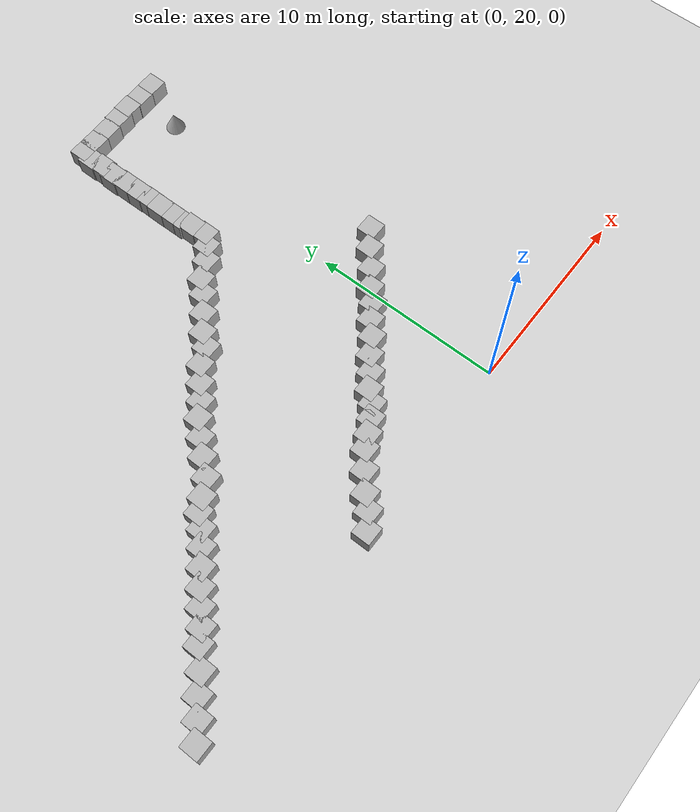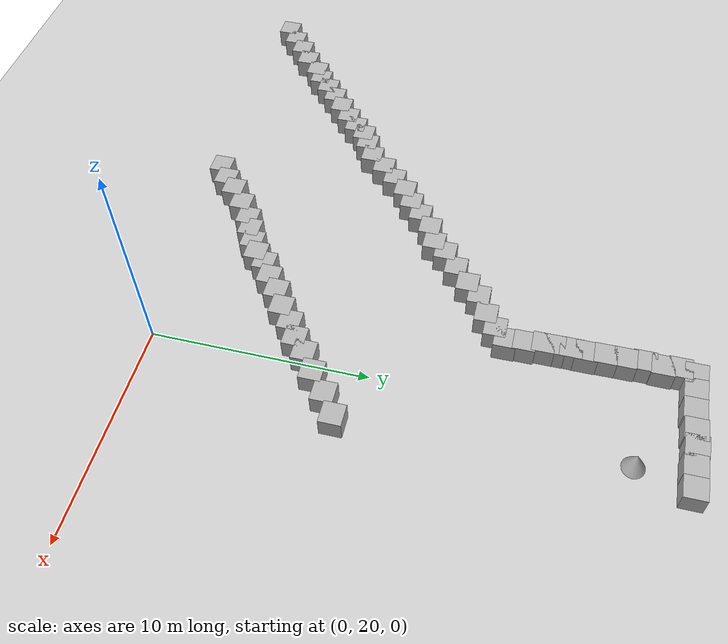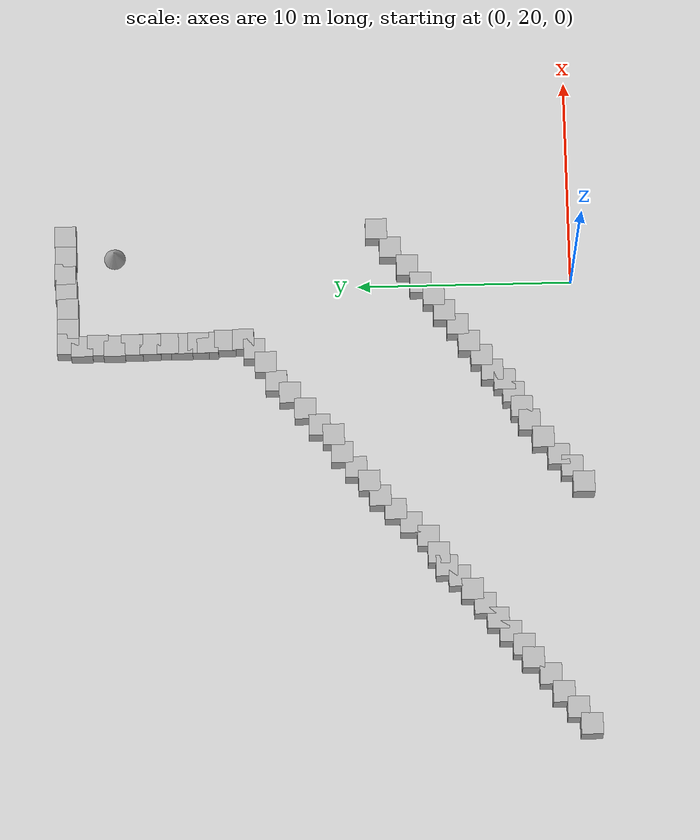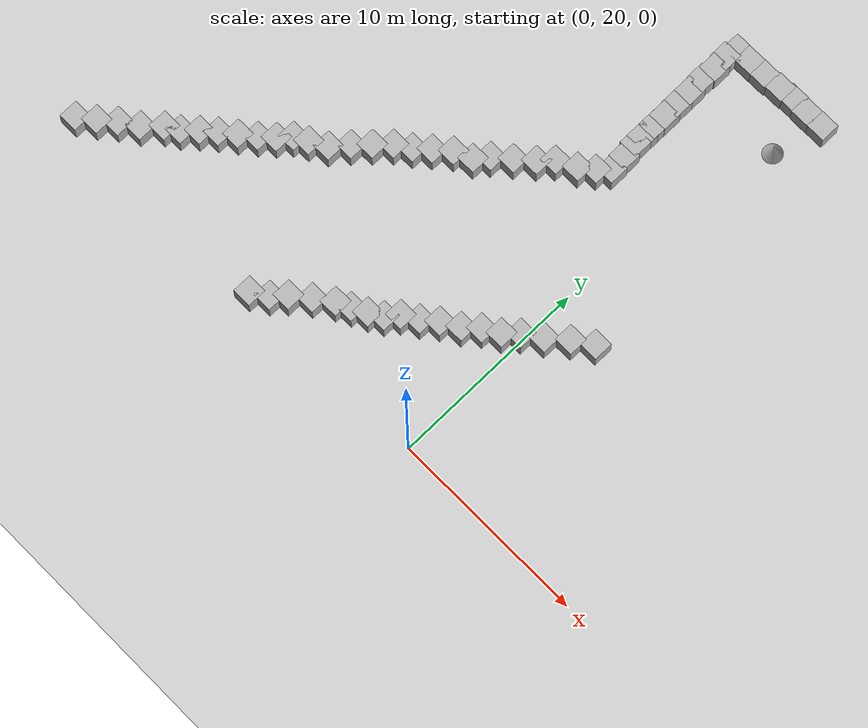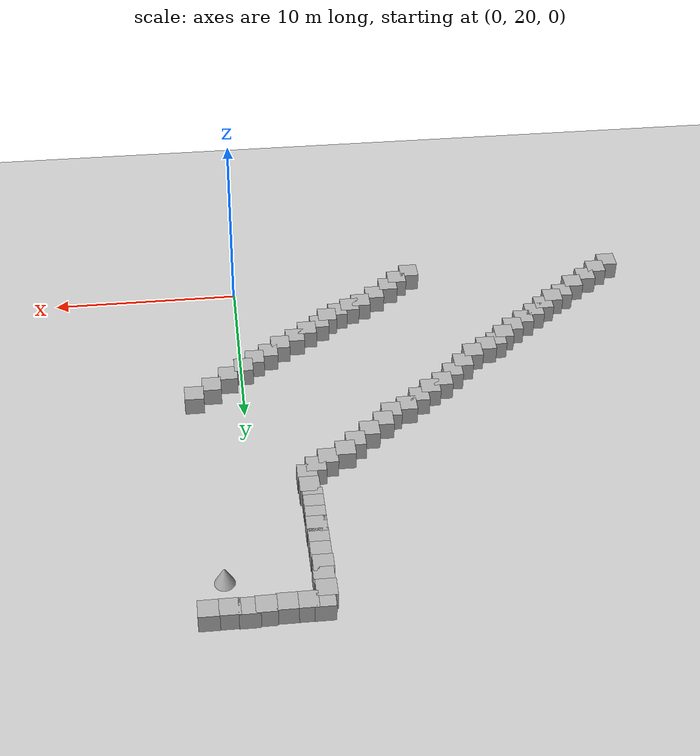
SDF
<sdf version="1.10">
 <world name="empty">
  <model name="ground_plane">
   <static>true</static>
   <link name="link">
    <collision name="collision">
     <geometry><plane><normal>0 0 1</normal><size>100 100</size></plane></geometry>
    </collision>
    <visual name="visual">
     <geometry><plane><normal>0 0 1</normal><size>100 100</size></plane></geometry>
     <material>
      <ambient>0.800000012 0.800000012 0.800000012 1</ambient>
      <diffuse>0.800000012 0.800000012 0.800000012 1</diffuse>
      <specular>0.800000012 0.800000012 0.800000012 1</specular>
     </material>
    </visual>
    <inertial>
     <mass>1</mass>
     <inertia><ixx>1</ixx><ixy>0</ixy><ixz>0</ixz><iyy>1</iyy><iyz>0</iyz><izz>1</izz></inertia>
    </inertial>
   </link>
  </model>
  <model name="box_7_115">
   <pose>2.4471903687864822 43.687776101140003 0.5 0 0 0</pose>
   <link name="box_link">
    <inertial>
     <inertia><ixx>0.16666</ixx><ixy>0</ixy><ixz>0</ixz><iyy>0.16666</iyy><iyz>0</iyz><izz>0.16666</izz></inertia>
     <mass>1</mass>
    </inertial>
    <collision name="box_collision"><geometry><box><size>1 1 1</size></box></geometry></collision>
    <visual name="box_visual">
     <geometry><box><size>1 1 1</size></box></geometry>
     <material>
      <ambient>0.300000012 0.300000012 0.300000012 1</ambient>
      <diffuse>0.699999988 0.699999988 0.699999988 1</diffuse>
      <specular>1 1 1 1</specular>
     </material>
    </visual>
   </link>
   <static>false</static>
  </model>
  <model name="box_7_116">
   <pose>1.4781276219221224 43.677494067447036 0.5 0 0 0</pose>
   <link name="box_link">
    <inertial>
     <inertia><ixx>0.16666</ixx><ixy>0</ixy><ixz>0</ixz><iyy>0.16666</iyy><iyz>0</iyz><izz>0.16666</izz></inertia>
     <mass>1</mass>
    </inertial>
    <collision name="box_collision"><geometry><box><size>1 1 1</size></box></geometry></collision>
    <visual name="box_visual">
     <geometry><box><size>1 1 1</size></box></geometry>
     <material>
      <ambient>0.300000012 0.300000012 0.300000012 1</ambient>
      <diffuse>0.699999988 0.699999988 0.699999988 1</diffuse>
      <specular>1 1 1 1</specular>
     </material>
    </visual>
   </link>
   <static>false</static>
  </model>
  <model name="box_7_117">
   <pose>0.59838941232294562 43.703197926859559 0.5 0 0 0</pose>
   <link name="box_link">
    <inertial>
     <inertia><ixx>0.16666</ixx><ixy>0</ixy><ixz>0</ixz><iyy>0.16666</iyy><iyz>0</iyz><izz>0.16666</izz></inertia>
     <mass>1</mass>
    </inertial>
    <collision name="box_collision"><geometry><box><size>1 1 1</size></box></geometry></collision>
    <visual name="box_visual">
     <geometry><box><size>1 1 1</size></box></geometry>
     <material>
      <ambient>0.300000012 0.300000012 0.300000012 1</ambient>
      <diffuse>0.699999988 0.699999988 0.699999988 1</diffuse>
      <specular>1 1 1 1</specular>
     </material>
    </visual>
   </link>
   <static>false</static>
  </model>
  <model name="box_7_118">
   <pose>-0.1727487053402923 43.656934613011174 0.5 0 0 0</pose>
   <link name="box_link">
    <inertial>
     <inertia><ixx>0.16666</ixx><ixy>0</ixy><ixz>0</ixz><iyy>0.16666</iyy><iyz>0</iyz><izz>0.16666</izz></inertia>
     <mass>1</mass>
    </inertial>
    <collision name="box_collision"><geometry><box><size>1 1 1</size></box></geometry></collision>
    <visual name="box_visual">
     <geometry><box><size>1 1 1</size></box></geometry>
     <material>
      <ambient>0.300000012 0.300000012 0.300000012 1</ambient>
      <diffuse>0.699999988 0.699999988 0.699999988 1</diffuse>
      <specular>1 1 1 1</specular>
     </material>
    </visual>
   </link>
   <static>false</static>
  </model>
  <model name="box_7_119">
   <pose>-1.1270526920820441 43.596638676921927 0.5 0 0 0</pose>
   <link name="box_link">
    <inertial>
     <inertia><ixx>0.16666</ixx><ixy>0</ixy><ixz>0</ixz><iyy>0.16666</iyy><iyz>0</iyz><izz>0.16666</izz></inertia>
     <mass>1</mass>
    </inertial>
    <collision name="box_collision"><geometry><box><size>1 1 1</size></box></geometry></collision>
    <visual name="box_visual">
     <geometry><box><size>1 1 1</size></box></geometry>
     <material>
      <ambient>0.300000012 0.300000012 0.300000012 1</ambient>
      <diffuse>0.699999988 0.699999988 0.699999988 1</diffuse>
      <specular>1 1 1 1</specular>
     </material>
    </visual>
   </link>
   <static>false</static>
  </model>
  <model name="box_7_120">
   <pose>-2.0641895070454108 43.588703833776485 0.5 0 0 0</pose>
   <link name="box_link">
    <inertial>
     <inertia><ixx>0.16666</ixx><ixy>0</ixy><ixz>0</ixz><iyy>0.16666</iyy><iyz>0</iyz><izz>0.16666</izz></inertia>
     <mass>1</mass>
    </inertial>
    <collision name="box_collision"><geometry><box><size>1 1 1</size></box></geometry></collision>
    <visual name="box_visual">
     <geometry><box><size>1 1 1</size></box></geometry>
     <material>
      <ambient>0.300000012 0.300000012 0.300000012 1</ambient>
      <diffuse>0.699999988 0.699999988 0.699999988 1</diffuse>
      <specular>1 1 1 1</specular>
     </material>
    </visual>
   </link>
   <static>false</static>
  </model>
  <model name="box_7_121">
   <pose>-2.8369073517508143 43.594247403610829 0.5 0 0 0</pose>
   <link name="box_link">
    <inertial>
     <inertia><ixx>0.16666</ixx><ixy>0</ixy><ixz>0</ixz><iyy>0.16666</iyy><iyz>0</iyz><izz>0.16666</izz></inertia>
     <mass>1</mass>
    </inertial>
    <collision name="box_collision"><geometry><box><size>1 1 1</size></box></geometry></collision>
    <visual name="box_visual">
     <geometry><box><size>1 1 1</size></box></geometry>
     <material>
      <ambient>0.300000012 0.300000012 0.300000012 1</ambient>
      <diffuse>0.699999988 0.699999988 0.699999988 1</diffuse>
      <specular>1 1 1 1</specular>
     </material>
    </visual>
   </link>
   <static>false</static>
  </model>
  <model name="box_7_122">
   <pose>-2.9721799100249795 42.940776070693047 0.5 0 0 0</pose>
   <link name="box_link">
    <inertial>
     <inertia><ixx>0.16666</ixx><ixy>0</ixy><ixz>0</ixz><iyy>0.16666</iyy><iyz>0</iyz><izz>0.16666</izz></inertia>
     <mass>1</mass>
    </inertial>
    <collision name="box_collision"><geometry><box><size>1 1 1</size></box></geometry></collision>
    <visual name="box_visual">
     <geometry><box><size>1 1 1</size></box></geometry>
     <material>
      <ambient>0.300000012 0.300000012 0.300000012 1</ambient>
      <diffuse>0.699999988 0.699999988 0.699999988 1</diffuse>
      <specular>1 1 1 1</specular>
     </material>
    </visual>
   </link>
   <static>false</static>
  </model>
  <model name="box_7_123">
   <pose>-2.9280016907426711 42.196661175639719 0.5 0 0 0</pose>
   <link name="box_link">
    <inertial>
     <inertia><ixx>0.16666</ixx><ixy>0</ixy><ixz>0</ixz><iyy>0.16666</iyy><iyz>0</iyz><izz>0.16666</izz></inertia>
     <mass>1</mass>
    </inertial>
    <collision name="box_collision"><geometry><box><size>1 1 1</size></box></geometry></collision>
    <visual name="box_visual">
     <geometry><box><size>1 1 1</size></box></geometry>
     <material>
      <ambient>0.300000012 0.300000012 0.300000012 1</ambient>
      <diffuse>0.699999988 0.699999988 0.699999988 1</diffuse>
      <specular>1 1 1 1</specular>
     </material>
    </visual>
   </link>
   <static>false</static>
  </model>
  <model name="box_7_124">
   <pose>-2.9763911740371682 41.427905493202431 0.5 0 0 0</pose>
   <link name="box_link">
    <inertial>
     <inertia><ixx>0.16666</ixx><ixy>0</ixy><ixz>0</ixz><iyy>0.16666</iyy><iyz>0</iyz><izz>0.16666</izz></inertia>
     <mass>1</mass>
    </inertial>
    <collision name="box_collision"><geometry><box><size>1 1 1</size></box></geometry></collision>
    <visual name="box_visual">
     <geometry><box><size>1 1 1</size></box></geometry>
     <material>
      <ambient>0.300000012 0.300000012 0.300000012 1</ambient>
      <diffuse>0.699999988 0.699999988 0.699999988 1</diffuse>
      <specular>1 1 1 1</specular>
     </material>
    </visual>
   </link>
   <static>false</static>
  </model>
  <model name="box_7_125">
   <pose>-2.934513633299642 40.60224227928903 0.5 0 0 0</pose>
   <link name="box_link">
    <inertial>
     <inertia><ixx>0.16666</ixx><ixy>0</ixy><ixz>0</ixz><iyy>0.16666</iyy><iyz>0</iyz><izz>0.16666</izz></inertia>
     <mass>1</mass>
    </inertial>
    <collision name="box_collision"><geometry><box><size>1 1 1</size></box></geometry></collision>
    <visual name="box_visual">
     <geometry><box><size>1 1 1</size></box></geometry>
     <material>
      <ambient>0.300000012 0.300000012 0.300000012 1</ambient>
      <diffuse>0.699999988 0.699999988 0.699999988 1</diffuse>
      <specular>1 1 1 1</specular>
     </material>
    </visual>
   </link>
   <static>false</static>
  </model>
  <model name="box_7_126">
   <pose>-2.9280084508352244 39.765509934705626 0.5 0 0 0</pose>
   <link name="box_link">
    <inertial>
     <inertia><ixx>0.16666</ixx><ixy>0</ixy><ixz>0</ixz><iyy>0.16666</iyy><iyz>0</iyz><izz>0.16666</izz></inertia>
     <mass>1</mass>
    </inertial>
    <collision name="box_collision"><geometry><box><size>1 1 1</size></box></geometry></collision>
    <visual name="box_visual">
     <geometry><box><size>1 1 1</size></box></geometry>
     <material>
      <ambient>0.300000012 0.300000012 0.300000012 1</ambient>
      <diffuse>0.699999988 0.699999988 0.699999988 1</diffuse>
      <specular>1 1 1 1</specular>
     </material>
    </visual>
   </link>
   <static>false</static>
  </model>
  <model name="box_7_127">
   <pose>-2.9034381792519941 38.949233205330124 0.5 0 0 0</pose>
   <link name="box_link">
    <inertial>
     <inertia><ixx>0.16666</ixx><ixy>0</ixy><ixz>0</ixz><iyy>0.16666</iyy><iyz>0</iyz><izz>0.16666</izz></inertia>
     <mass>1</mass>
    </inertial>
    <collision name="box_collision"><geometry><box><size>1 1 1</size></box></geometry></collision>
    <visual name="box_visual">
     <geometry><box><size>1 1 1</size></box></geometry>
     <material>
      <ambient>0.300000012 0.300000012 0.300000012 1</ambient>
      <diffuse>0.699999988 0.699999988 0.699999988 1</diffuse>
      <specular>1 1 1 1</specular>
     </material>
    </visual>
   </link>
   <static>false</static>
  </model>
  <model name="box_7_128">
   <pose>-2.9125008093424825 38.285947061899762 0.5 0 0 0</pose>
   <link name="box_link">
    <inertial>
     <inertia><ixx>0.16666</ixx><ixy>0</ixy><ixz>0</ixz><iyy>0.16666</iyy><iyz>0</iyz><izz>0.16666</izz></inertia>
     <mass>1</mass>
    </inertial>
    <collision name="box_collision"><geometry><box><size>1 1 1</size></box></geometry></collision>
    <visual name="box_visual">
     <geometry><box><size>1 1 1</size></box></geometry>
     <material>
      <ambient>0.300000012 0.300000012 0.300000012 1</ambient>
      <diffuse>0.699999988 0.699999988 0.699999988 1</diffuse>
      <specular>1 1 1 1</specular>
     </material>
    </visual>
   </link>
   <static>false</static>
  </model>
  <model name="box_7_129">
   <pose>-2.9042566282335311 37.528984026693919 0.5 0 0 0</pose>
   <link name="box_link">
    <inertial>
     <inertia><ixx>0.16666</ixx><ixy>0</ixy><ixz>0</ixz><iyy>0.16666</iyy><iyz>0</iyz><izz>0.16666</izz></inertia>
     <mass>1</mass>
    </inertial>
    <collision name="box_collision"><geometry><box><size>1 1 1</size></box></geometry></collision>
    <visual name="box_visual">
     <geometry><box><size>1 1 1</size></box></geometry>
     <material>
      <ambient>0.300000012 0.300000012 0.300000012 1</ambient>
      <diffuse>0.699999988 0.699999988 0.699999988 1</diffuse>
      <specular>1 1 1 1</specular>
     </material>
    </visual>
   </link>
   <static>false</static>
  </model>
  <model name="box_7_130">
   <pose>-2.9011840146607861 37.088707593077444 0.5 0 0 0</pose>
   <link name="box_link">
    <inertial>
     <inertia><ixx>0.16666</ixx><ixy>0</ixy><ixz>0</ixz><iyy>0.16666</iyy><iyz>0</iyz><izz>0.16666</izz></inertia>
     <mass>1</mass>
    </inertial>
    <collision name="box_collision"><geometry><box><size>1 1 1</size></box></geometry></collision>
    <visual name="box_visual">
     <geometry><box><size>1 1 1</size></box></geometry>
     <material>
      <ambient>0.300000012 0.300000012 0.300000012 1</ambient>
      <diffuse>0.699999988 0.699999988 0.699999988 1</diffuse>
      <specular>1 1 1 1</specular>
     </material>
    </visual>
   </link>
   <static>false</static>
  </model>
  <model name="cone">
   <pose>1.6231491636333293 41.406147227595547 0.5 0 0 0</pose>
   <link name="cone_link">
    <inertial>
     <inertia>
      <ixx>0.074999999999999997</ixx>
      <ixy>0</ixy>
      <ixz>0</ixz>
      <iyy>0.074999999999999997</iyy>
      <iyz>0</iyz>
      <izz>0.074999999999999997</izz>
     </inertia>
     <mass>1</mass>
    </inertial>
    <collision name="cone_collision">
     <geometry><cone><radius>0.5</radius><length>1</length></cone></geometry>
    </collision>
    <visual name="cone_visual">
     <geometry><cone><radius>0.5</radius><length>1</length></cone></geometry>
     <material>
      <ambient>0.300000012 0.300000012 0.300000012 1</ambient>
      <diffuse>0.699999988 0.699999988 0.699999988 1</diffuse>
      <specular>1 1 1 1</specular>
     </material>
    </visual>
   </link>
   <static>false</static>
  </model>
  <model name="box_19">
   <pose>-2.8085357170069036 36.277302544898852 0.5 0 0 0</pose>
   <link name="box_link">
    <inertial>
     <inertia><ixx>0.16666</ixx><ixy>0</ixy><ixz>0</ixz><iyy>0.16666</iyy><iyz>0</iyz><izz>0.16666</izz></inertia>
     <mass>1</mass>
    </inertial>
    <collision name="box_collision"><geometry><box><size>1 1 1</size></box></geometry></collision>
    <visual name="box_visual">
     <geometry><box><size>1 1 1</size></box></geometry>
     <material>
      <ambient>0.300000012 0.300000012 0.300000012 1</ambient>
      <diffuse>0.699999988 0.699999988 0.699999988 1</diffuse>
      <specular>1 1 1 1</specular>
     </material>
    </visual>
   </link>
   <static>false</static>
  </model>
  <model name="box_7_131">
   <pose>-2.7735017019063557 35.434279046407973 0.5 0 0 0</pose>
   <link name="box_link">
    <inertial>
     <inertia><ixx>0.16666</ixx><ixy>0</ixy><ixz>0</ixz><iyy>0.16666</iyy><iyz>0</iyz><izz>0.16666</izz></inertia>
     <mass>1</mass>
    </inertial>
    <collision name="box_collision"><geometry><box><size>1 1 1</size></box></geometry></collision>
    <visual name="box_visual">
     <geometry><box><size>1 1 1</size></box></geometry>
     <material>
      <ambient>0.300000012 0.300000012 0.300000012 1</ambient>
      <diffuse>0.699999988 0.699999988 0.699999988 1</diffuse>
      <specular>1 1 1 1</specular>
     </material>
    </visual>
   </link>
   <static>false</static>
  </model>
  <model name="box_7_132">
   <pose>-3.2518631290173872 34.919604592851705 0.5 0 0 0</pose>
   <link name="box_link">
    <inertial>
     <inertia><ixx>0.16666</ixx><ixy>0</ixy><ixz>0</ixz><iyy>0.16666</iyy><iyz>0</iyz><izz>0.16666</izz></inertia>
     <mass>1</mass>
    </inertial>
    <collision name="box_collision"><geometry><box><size>1 1 1</size></box></geometry></collision>
    <visual name="box_visual">
     <geometry><box><size>1 1 1</size></box></geometry>
     <material>
      <ambient>0.300000012 0.300000012 0.300000012 1</ambient>
      <diffuse>0.699999988 0.699999988 0.699999988 1</diffuse>
      <specular>1 1 1 1</specular>
     </material>
    </visual>
   </link>
   <static>false</static>
  </model>
  <model name="box_7_133">
   <pose>-3.901642174971685 34.403278814547349 0.5 0 0 0</pose>
   <link name="box_link">
    <inertial>
     <inertia><ixx>0.16666</ixx><ixy>0</ixy><ixz>0</ixz><iyy>0.16666</iyy><iyz>0</iyz><izz>0.16666</izz></inertia>
     <mass>1</mass>
    </inertial>
    <collision name="box_collision"><geometry><box><size>1 1 1</size></box></geometry></collision>
    <visual name="box_visual">
     <geometry><box><size>1 1 1</size></box></geometry>
     <material>
      <ambient>0.300000012 0.300000012 0.300000012 1</ambient>
      <diffuse>0.699999988 0.699999988 0.699999988 1</diffuse>
      <specular>1 1 1 1</specular>
     </material>
    </visual>
   </link>
   <static>false</static>
  </model>
  <model name="box_7_134">
   <pose>-4.8285189355674838 33.920678409191623 0.5 0 0 0</pose>
   <link name="box_link">
    <inertial>
     <inertia><ixx>0.16666</ixx><ixy>0</ixy><ixz>0</ixz><iyy>0.16666</iyy><iyz>0</iyz><izz>0.16666</izz></inertia>
     <mass>1</mass>
    </inertial>
    <collision name="box_collision"><geometry><box><size>1 1 1</size></box></geometry></collision>
    <visual name="box_visual">
     <geometry><box><size>1 1 1</size></box></geometry>
     <material>
      <ambient>0.300000012 0.300000012 0.300000012 1</ambient>
      <diffuse>0.699999988 0.699999988 0.699999988 1</diffuse>
      <specular>1 1 1 1</specular>
     </material>
    </visual>
   </link>
   <static>false</static>
  </model>
  <model name="box_7_135">
   <pose>-5.4134456976116692 33.294883308442927 0.5 0 0 0</pose>
   <link name="box_link">
    <inertial>
     <inertia><ixx>0.16666</ixx><ixy>0</ixy><ixz>0</ixz><iyy>0.16666</iyy><iyz>0</iyz><izz>0.16666</izz></inertia>
     <mass>1</mass>
    </inertial>
    <collision name="box_collision"><geometry><box><size>1 1 1</size></box></geometry></collision>
    <visual name="box_visual">
     <geometry><box><size>1 1 1</size></box></geometry>
     <material>
      <ambient>0.300000012 0.300000012 0.300000012 1</ambient>
      <diffuse>0.699999988 0.699999988 0.699999988 1</diffuse>
      <specular>1 1 1 1</specular>
     </material>
    </visual>
   </link>
   <static>false</static>
  </model>
  <model name="box_7_136">
   <pose>-6.2064335820567731 32.603498856234857 0.5 0 0 0</pose>
   <link name="box_link">
    <inertial>
     <inertia><ixx>0.16666</ixx><ixy>0</ixy><ixz>0</ixz><iyy>0.16666</iyy><iyz>0</iyz><izz>0.16666</izz></inertia>
     <mass>1</mass>
    </inertial>
    <collision name="box_collision"><geometry><box><size>1 1 1</size></box></geometry></collision>
    <visual name="box_visual">
     <geometry><box><size>1 1 1</size></box></geometry>
     <material>
      <ambient>0.300000012 0.300000012 0.300000012 1</ambient>
      <diffuse>0.699999988 0.699999988 0.699999988 1</diffuse>
      <specular>1 1 1 1</specular>
     </material>
    </visual>
   </link>
   <static>false</static>
  </model>
  <model name="box_7_137">
   <pose>-7.0026504099331266 31.949669320129779 0.5 0 0 0</pose>
   <link name="box_link">
    <inertial>
     <inertia><ixx>0.16666</ixx><ixy>0</ixy><ixz>0</ixz><iyy>0.16666</iyy><iyz>0</iyz><izz>0.16666</izz></inertia>
     <mass>1</mass>
    </inertial>
    <collision name="box_collision"><geometry><box><size>1 1 1</size></box></geometry></collision>
    <visual name="box_visual">
     <geometry><box><size>1 1 1</size></box></geometry>
     <material>
      <ambient>0.300000012 0.300000012 0.300000012 1</ambient>
      <diffuse>0.699999988 0.699999988 0.699999988 1</diffuse>
      <specular>1 1 1 1</specular>
     </material>
    </visual>
   </link>
   <static>false</static>
  </model>
  <model name="box_7_138">
   <pose>-7.4906202281272076 31.313689824834416 0.5 0 0 0</pose>
   <link name="box_link">
    <inertial>
     <inertia><ixx>0.16666</ixx><ixy>0</ixy><ixz>0</ixz><iyy>0.16666</iyy><iyz>0</iyz><izz>0.16666</izz></inertia>
     <mass>1</mass>
    </inertial>
    <collision name="box_collision"><geometry><box><size>1 1 1</size></box></geometry></collision>
    <visual name="box_visual">
     <geometry><box><size>1 1 1</size></box></geometry>
     <material>
      <ambient>0.300000012 0.300000012 0.300000012 1</ambient>
      <diffuse>0.699999988 0.699999988 0.699999988 1</diffuse>
      <specular>1 1 1 1</specular>
     </material>
    </visual>
   </link>
   <static>false</static>
  </model>
  <model name="box_7_139">
   <pose>-8.3553200089849966 30.933286261983685 0.5 0 0 0</pose>
   <link name="box_link">
    <inertial>
     <inertia><ixx>0.16666</ixx><ixy>0</ixy><ixz>0</ixz><iyy>0.16666</iyy><iyz>0</iyz><izz>0.16666</izz></inertia>
     <mass>1</mass>
    </inertial>
    <collision name="box_collision"><geometry><box><size>1 1 1</size></box></geometry></collision>
    <visual name="box_visual">
     <geometry><box><size>1 1 1</size></box></geometry>
     <material>
      <ambient>0.300000012 0.300000012 0.300000012 1</ambient>
      <diffuse>0.699999988 0.699999988 0.699999988 1</diffuse>
      <specular>1 1 1 1</specular>
     </material>
    </visual>
   </link>
   <static>false</static>
  </model>
  <model name="box_7_140">
   <pose>-9.0876240810114979 30.304482544520461 0.5 0 0 0</pose>
   <link name="box_link">
    <inertial>
     <inertia><ixx>0.16666</ixx><ixy>0</ixy><ixz>0</ixz><iyy>0.16666</iyy><iyz>0</iyz><izz>0.16666</izz></inertia>
     <mass>1</mass>
    </inertial>
    <collision name="box_collision"><geometry><box><size>1 1 1</size></box></geometry></collision>
    <visual name="box_visual">
     <geometry><box><size>1 1 1</size></box></geometry>
     <material>
      <ambient>0.300000012 0.300000012 0.300000012 1</ambient>
      <diffuse>0.699999988 0.699999988 0.699999988 1</diffuse>
      <specular>1 1 1 1</specular>
     </material>
    </visual>
   </link>
   <static>false</static>
  </model>
  <model name="box_7_141">
   <pose>-9.7548894812770808 29.708215752003941 0.5 0 0 0</pose>
   <link name="box_link">
    <inertial>
     <inertia><ixx>0.16666</ixx><ixy>0</ixy><ixz>0</ixz><iyy>0.16666</iyy><iyz>0</iyz><izz>0.16666</izz></inertia>
     <mass>1</mass>
    </inertial>
    <collision name="box_collision"><geometry><box><size>1 1 1</size></box></geometry></collision>
    <visual name="box_visual">
     <geometry><box><size>1 1 1</size></box></geometry>
     <material>
      <ambient>0.300000012 0.300000012 0.300000012 1</ambient>
      <diffuse>0.699999988 0.699999988 0.699999988 1</diffuse>
      <specular>1 1 1 1</specular>
     </material>
    </visual>
   </link>
   <static>false</static>
  </model>
  <model name="box_7_152">
   <pose>2.55878672880965 29.11065130353921 0.5 0 0 0</pose>
   <link name="box_link">
    <inertial>
     <inertia><ixx>0.16666</ixx><ixy>0</ixy><ixz>0</ixz><iyy>0.16666</iyy><iyz>0</iyz><izz>0.16666</izz></inertia>
     <mass>1</mass>
    </inertial>
    <collision name="box_collision"><geometry><box><size>1 1 1</size></box></geometry></collision>
    <visual name="box_visual">
     <geometry><box><size>1 1 1</size></box></geometry>
     <material>
      <ambient>0.300000012 0.300000012 0.300000012 1</ambient>
      <diffuse>0.699999988 0.699999988 0.699999988 1</diffuse>
      <specular>1 1 1 1</specular>
     </material>
    </visual>
   </link>
   <static>false</static>
  </model>
  <model name="box_7_153">
   <pose>1.6307995514645968 28.47608963079141 0.5 0 0 0</pose>
   <link name="box_link">
    <inertial>
     <inertia><ixx>0.16666</ixx><ixy>0</ixy><ixz>0</ixz><iyy>0.16666</iyy><iyz>0</iyz><izz>0.16666</izz></inertia>
     <mass>1</mass>
    </inertial>
    <collision name="box_collision"><geometry><box><size>1 1 1</size></box></geometry></collision>
    <visual name="box_visual">
     <geometry><box><size>1 1 1</size></box></geometry>
     <material>
      <ambient>0.300000012 0.300000012 0.300000012 1</ambient>
      <diffuse>0.699999988 0.699999988 0.699999988 1</diffuse>
      <specular>1 1 1 1</specular>
     </material>
    </visual>
   </link>
   <static>false</static>
  </model>
  <model name="box_7_154">
   <pose>0.73475260060417091 27.700397847964801 0.5 0 0 0</pose>
   <link name="box_link">
    <inertial>
     <inertia><ixx>0.16666</ixx><ixy>0</ixy><ixz>0</ixz><iyy>0.16666</iyy><iyz>0</iyz><izz>0.16666</izz></inertia>
     <mass>1</mass>
    </inertial>
    <collision name="box_collision"><geometry><box><size>1 1 1</size></box></geometry></collision>
    <visual name="box_visual">
     <geometry><box><size>1 1 1</size></box></geometry>
     <material>
      <ambient>0.300000012 0.300000012 0.300000012 1</ambient>
      <diffuse>0.699999988 0.699999988 0.699999988 1</diffuse>
      <specular>1 1 1 1</specular>
     </material>
    </visual>
   </link>
   <static>false</static>
  </model>
  <model name="box_7_155">
   <pose>-0.12920811604722449 27.091582070480765 0.5 0 0 0</pose>
   <link name="box_link">
    <inertial>
     <inertia><ixx>0.16666</ixx><ixy>0</ixy><ixz>0</ixz><iyy>0.16666</iyy><iyz>0</iyz><izz>0.16666</izz></inertia>
     <mass>1</mass>
    </inertial>
    <collision name="box_collision"><geometry><box><size>1 1 1</size></box></geometry></collision>
    <visual name="box_visual">
     <geometry><box><size>1 1 1</size></box></geometry>
     <material>
      <ambient>0.300000012 0.300000012 0.300000012 1</ambient>
      <diffuse>0.699999988 0.699999988 0.699999988 1</diffuse>
      <specular>1 1 1 1</specular>
     </material>
    </visual>
   </link>
   <static>false</static>
  </model>
  <model name="box_7_156">
   <pose>-0.75229388837423894 26.492932873753588 0.5 0 0 0</pose>
   <link name="box_link">
    <inertial>
     <inertia><ixx>0.16666</ixx><ixy>0</ixy><ixz>0</ixz><iyy>0.16666</iyy><iyz>0</iyz><izz>0.16666</izz></inertia>
     <mass>1</mass>
    </inertial>
    <collision name="box_collision"><geometry><box><size>1 1 1</size></box></geometry></collision>
    <visual name="box_visual">
     <geometry><box><size>1 1 1</size></box></geometry>
     <material>
      <ambient>0.300000012 0.300000012 0.300000012 1</ambient>
      <diffuse>0.699999988 0.699999988 0.699999988 1</diffuse>
      <specular>1 1 1 1</specular>
     </material>
    </visual>
   </link>
   <static>false</static>
  </model>
  <model name="box_7_157">
   <pose>-1.5170872257366517 26.023769289318508 0.5 0 0 0</pose>
   <link name="box_link">
    <inertial>
     <inertia><ixx>0.16666</ixx><ixy>0</ixy><ixz>0</ixz><iyy>0.16666</iyy><iyz>0</iyz><izz>0.16666</izz></inertia>
     <mass>1</mass>
    </inertial>
    <collision name="box_collision"><geometry><box><size>1 1 1</size></box></geometry></collision>
    <visual name="box_visual">
     <geometry><box><size>1 1 1</size></box></geometry>
     <material>
      <ambient>0.300000012 0.300000012 0.300000012 1</ambient>
      <diffuse>0.699999988 0.699999988 0.699999988 1</diffuse>
      <specular>1 1 1 1</specular>
     </material>
    </visual>
   </link>
   <static>false</static>
  </model>
  <model name="box_7_158">
   <pose>-2.2124067777890355 25.417618787481814 0.5 0 0 0</pose>
   <link name="box_link">
    <inertial>
     <inertia><ixx>0.16666</ixx><ixy>0</ixy><ixz>0</ixz><iyy>0.16666</iyy><iyz>0</iyz><izz>0.16666</izz></inertia>
     <mass>1</mass>
    </inertial>
    <collision name="box_collision"><geometry><box><size>1 1 1</size></box></geometry></collision>
    <visual name="box_visual">
     <geometry><box><size>1 1 1</size></box></geometry>
     <material>
      <ambient>0.300000012 0.300000012 0.300000012 1</ambient>
      <diffuse>0.699999988 0.699999988 0.699999988 1</diffuse>
      <specular>1 1 1 1</specular>
     </material>
    </visual>
   </link>
   <static>false</static>
  </model>
  <model name="box_7_159">
   <pose>-3.0502308591997078 24.911421819162118 0.5 0 0 0</pose>
   <link name="box_link">
    <inertial>
     <inertia><ixx>0.16666</ixx><ixy>0</ixy><ixz>0</ixz><iyy>0.16666</iyy><iyz>0</iyz><izz>0.16666</izz></inertia>
     <mass>1</mass>
    </inertial>
    <collision name="box_collision"><geometry><box><size>1 1 1</size></box></geometry></collision>
    <visual name="box_visual">
     <geometry><box><size>1 1 1</size></box></geometry>
     <material>
      <ambient>0.300000012 0.300000012 0.300000012 1</ambient>
      <diffuse>0.699999988 0.699999988 0.699999988 1</diffuse>
      <specular>1 1 1 1</specular>
     </material>
    </visual>
   </link>
   <static>false</static>
  </model>
  <model name="box_7_160">
   <pose>-3.751075266787022 24.339807277902885 0.5 0 0 0</pose>
   <link name="box_link">
    <inertial>
     <inertia><ixx>0.16666</ixx><ixy>0</ixy><ixz>0</ixz><iyy>0.16666</iyy><iyz>0</iyz><izz>0.16666</izz></inertia>
     <mass>1</mass>
    </inertial>
    <collision name="box_collision"><geometry><box><size>1 1 1</size></box></geometry></collision>
    <visual name="box_visual">
     <geometry><box><size>1 1 1</size></box></geometry>
     <material>
      <ambient>0.300000012 0.300000012 0.300000012 1</ambient>
      <diffuse>0.699999988 0.699999988 0.699999988 1</diffuse>
      <specular>1 1 1 1</specular>
     </material>
    </visual>
   </link>
   <static>false</static>
  </model>
  <model name="box_7_161">
   <pose>-4.4866233721267257 23.866373526643741 0.5 0 0 0</pose>
   <link name="box_link">
    <inertial>
     <inertia><ixx>0.16666</ixx><ixy>0</ixy><ixz>0</ixz><iyy>0.16666</iyy><iyz>0</iyz><izz>0.16666</izz></inertia>
     <mass>1</mass>
    </inertial>
    <collision name="box_collision"><geometry><box><size>1 1 1</size></box></geometry></collision>
    <visual name="box_visual">
     <geometry><box><size>1 1 1</size></box></geometry>
     <material>
      <ambient>0.300000012 0.300000012 0.300000012 1</ambient>
      <diffuse>0.699999988 0.699999988 0.699999988 1</diffuse>
      <specular>1 1 1 1</specular>
     </material>
    </visual>
   </link>
   <static>false</static>
  </model>
  <model name="box_7_162">
   <pose>-10.474176204769071 29.222391987320215 0.5 0 0 0</pose>
   <link name="box_link">
    <inertial>
     <inertia><ixx>0.16666</ixx><ixy>0</ixy><ixz>0</ixz><iyy>0.16666</iyy><iyz>0</iyz><izz>0.16666</izz></inertia>
     <mass>1</mass>
    </inertial>
    <collision name="box_collision"><geometry><box><size>1 1 1</size></box></geometry></collision>
    <visual name="box_visual">
     <geometry><box><size>1 1 1</size></box></geometry>
     <material>
      <ambient>0.300000012 0.300000012 0.300000012 1</ambient>
      <diffuse>0.699999988 0.699999988 0.699999988 1</diffuse>
      <specular>1 1 1 1</specular>
     </material>
    </visual>
   </link>
   <static>false</static>
  </model>
  <model name="box_7_163">
   <pose>-11.135800861743924 28.527890056469936 0.5 0 0 0</pose>
   <link name="box_link">
    <inertial>
     <inertia><ixx>0.16666</ixx><ixy>0</ixy><ixz>0</ixz><iyy>0.16666</iyy><iyz>0</iyz><izz>0.16666</izz></inertia>
     <mass>1</mass>
    </inertial>
    <collision name="box_collision"><geometry><box><size>1 1 1</size></box></geometry></collision>
    <visual name="box_visual">
     <geometry><box><size>1 1 1</size></box></geometry>
     <material>
      <ambient>0.300000012 0.300000012 0.300000012 1</ambient>
      <diffuse>0.699999988 0.699999988 0.699999988 1</diffuse>
      <specular>1 1 1 1</specular>
     </material>
    </visual>
   </link>
   <static>false</static>
  </model>
  <model name="box_7_164">
   <pose>-11.798207793623382 27.826299866166021 0.5 0 0 0</pose>
   <link name="box_link">
    <inertial>
     <inertia><ixx>0.16666</ixx><ixy>0</ixy><ixz>0</ixz><iyy>0.16666</iyy><iyz>0</iyz><izz>0.16666</izz></inertia>
     <mass>1</mass>
    </inertial>
    <collision name="box_collision"><geometry><box><size>1 1 1</size></box></geometry></collision>
    <visual name="box_visual">
     <geometry><box><size>1 1 1</size></box></geometry>
     <material>
      <ambient>0.300000012 0.300000012 0.300000012 1</ambient>
      <diffuse>0.699999988 0.699999988 0.699999988 1</diffuse>
      <specular>1 1 1 1</specular>
     </material>
    </visual>
   </link>
   <static>false</static>
  </model>
  <model name="box_7_165">
   <pose>-12.464323185656635 27.052473241842105 0.5 0 0 0</pose>
   <link name="box_link">
    <inertial>
     <inertia><ixx>0.16666</ixx><ixy>0</ixy><ixz>0</ixz><iyy>0.16666</iyy><iyz>0</iyz><izz>0.16666</izz></inertia>
     <mass>1</mass>
    </inertial>
    <collision name="box_collision"><geometry><box><size>1 1 1</size></box></geometry></collision>
    <visual name="box_visual">
     <geometry><box><size>1 1 1</size></box></geometry>
     <material>
      <ambient>0.300000012 0.300000012 0.300000012 1</ambient>
      <diffuse>0.699999988 0.699999988 0.699999988 1</diffuse>
      <specular>1 1 1 1</specular>
     </material>
    </visual>
   </link>
   <static>false</static>
  </model>
  <model name="box_7_166">
   <pose>-13.267995212049742 26.592100501127302 0.5 0 0 0</pose>
   <link name="box_link">
    <inertial>
     <inertia><ixx>0.16666</ixx><ixy>0</ixy><ixz>0</ixz><iyy>0.16666</iyy><iyz>0</iyz><izz>0.16666</izz></inertia>
     <mass>1</mass>
    </inertial>
    <collision name="box_collision"><geometry><box><size>1 1 1</size></box></geometry></collision>
    <visual name="box_visual">
     <geometry><box><size>1 1 1</size></box></geometry>
     <material>
      <ambient>0.300000012 0.300000012 0.300000012 1</ambient>
      <diffuse>0.699999988 0.699999988 0.699999988 1</diffuse>
      <specular>1 1 1 1</specular>
     </material>
    </visual>
   </link>
   <static>false</static>
  </model>
  <model name="box_7_167">
   <pose>-4.964420135651368 23.305933640001424 0.5 0 0 0</pose>
   <link name="box_link">
    <inertial>
     <inertia><ixx>0.16666</ixx><ixy>0</ixy><ixz>0</ixz><iyy>0.16666</iyy><iyz>0</iyz><izz>0.16666</izz></inertia>
     <mass>1</mass>
    </inertial>
    <collision name="box_collision"><geometry><box><size>1 1 1</size></box></geometry></collision>
    <visual name="box_visual">
     <geometry><box><size>1 1 1</size></box></geometry>
     <material>
      <ambient>0.300000012 0.300000012 0.300000012 1</ambient>
      <diffuse>0.699999988 0.699999988 0.699999988 1</diffuse>
      <specular>1 1 1 1</specular>
     </material>
    </visual>
   </link>
   <static>false</static>
  </model>
  <model name="box_7_168">
   <pose>-5.5933547093298612 22.909670504575899 0.5 0 0 0</pose>
   <link name="box_link">
    <inertial>
     <inertia><ixx>0.16666</ixx><ixy>0</ixy><ixz>0</ixz><iyy>0.16666</iyy><iyz>0</iyz><izz>0.16666</izz></inertia>
     <mass>1</mass>
    </inertial>
    <collision name="box_collision"><geometry><box><size>1 1 1</size></box></geometry></collision>
    <visual name="box_visual">
     <geometry><box><size>1 1 1</size></box></geometry>
     <material>
      <ambient>0.300000012 0.300000012 0.300000012 1</ambient>
      <diffuse>0.699999988 0.699999988 0.699999988 1</diffuse>
      <specular>1 1 1 1</specular>
     </material>
    </visual>
   </link>
   <static>false</static>
  </model>
  <model name="box_7_169">
   <pose>-6.2923202068000297 22.547950691156863 0.5 0 0 0</pose>
   <link name="box_link">
    <inertial>
     <inertia><ixx>0.16666</ixx><ixy>0</ixy><ixz>0</ixz><iyy>0.16666</iyy><iyz>0</iyz><izz>0.16666</izz></inertia>
     <mass>1</mass>
    </inertial>
    <collision name="box_collision"><geometry><box><size>1 1 1</size></box></geometry></collision>
    <visual name="box_visual">
     <geometry><box><size>1 1 1</size></box></geometry>
     <material>
      <ambient>0.300000012 0.300000012 0.300000012 1</ambient>
      <diffuse>0.699999988 0.699999988 0.699999988 1</diffuse>
      <specular>1 1 1 1</specular>
     </material>
    </visual>
   </link>
   <static>false</static>
  </model>
  <model name="box_7_170">
   <pose>-6.956551454885286 22.217247908321497 0.5 0 0 0</pose>
   <link name="box_link">
    <inertial>
     <inertia><ixx>0.16666</ixx><ixy>0</ixy><ixz>0</ixz><iyy>0.16666</iyy><iyz>0</iyz><izz>0.16666</izz></inertia>
     <mass>1</mass>
    </inertial>
    <collision name="box_collision"><geometry><box><size>1 1 1</size></box></geometry></collision>
    <visual name="box_visual">
     <geometry><box><size>1 1 1</size></box></geometry>
     <material>
      <ambient>0.300000012 0.300000012 0.300000012 1</ambient>
      <diffuse>0.699999988 0.699999988 0.699999988 1</diffuse>
      <specular>1 1 1 1</specular>
     </material>
    </visual>
   </link>
   <static>false</static>
  </model>
  <model name="box_7_171">
   <pose>-7.7990093939908469 21.601926794770485 0.5 0 0 0</pose>
   <link name="box_link">
    <inertial>
     <inertia><ixx>0.16666</ixx><ixy>0</ixy><ixz>0</ixz><iyy>0.16666</iyy><iyz>0</iyz><izz>0.16666</izz></inertia>
     <mass>1</mass>
    </inertial>
    <collision name="box_collision"><geometry><box><size>1 1 1</size></box></geometry></collision>
    <visual name="box_visual">
     <geometry><box><size>1 1 1</size></box></geometry>
     <material>
      <ambient>0.300000012 0.300000012 0.300000012 1</ambient>
      <diffuse>0.699999988 0.699999988 0.699999988 1</diffuse>
      <specular>1 1 1 1</specular>
     </material>
    </visual>
   </link>
   <static>false</static>
  </model>
  <model name="box_7_172">
   <pose>-8.6431204888343345 20.910755163855342 0.5 0 0 0</pose>
   <link name="box_link">
    <inertial>
     <inertia><ixx>0.16666</ixx><ixy>0</ixy><ixz>0</ixz><iyy>0.16666</iyy><iyz>0</iyz><izz>0.16666</izz></inertia>
     <mass>1</mass>
    </inertial>
    <collision name="box_collision"><geometry><box><size>1 1 1</size></box></geometry></collision>
    <visual name="box_visual">
     <geometry><box><size>1 1 1</size></box></geometry>
     <material>
      <ambient>0.300000012 0.300000012 0.300000012 1</ambient>
      <diffuse>0.699999988 0.699999988 0.699999988 1</diffuse>
      <specular>1 1 1 1</specular>
     </material>
    </visual>
   </link>
   <static>false</static>
  </model>
  <model name="box_7_173">
   <pose>-13.896136775471984 26.241729612332865 0.5 0 0 0</pose>
   <link name="box_link">
    <inertial>
     <inertia><ixx>0.16666</ixx><ixy>0</ixy><ixz>0</ixz><iyy>0.16666</iyy><iyz>0</iyz><izz>0.16666</izz></inertia>
     <mass>1</mass>
    </inertial>
    <collision name="box_collision"><geometry><box><size>1 1 1</size></box></geometry></collision>
    <visual name="box_visual">
     <geometry><box><size>1 1 1</size></box></geometry>
     <material>
      <ambient>0.300000012 0.300000012 0.300000012 1</ambient>
      <diffuse>0.699999988 0.699999988 0.699999988 1</diffuse>
      <specular>1 1 1 1</specular>
     </material>
    </visual>
   </link>
   <static>false</static>
  </model>
  <model name="box_7_174">
   <pose>-14.396179714322614 25.661436416341012 0.5 0 0 0</pose>
   <link name="box_link">
    <inertial>
     <inertia><ixx>0.16666</ixx><ixy>0</ixy><ixz>0</ixz><iyy>0.16666</iyy><iyz>0</iyz><izz>0.16666</izz></inertia>
     <mass>1</mass>
    </inertial>
    <collision name="box_collision"><geometry><box><size>1 1 1</size></box></geometry></collision>
    <visual name="box_visual">
     <geometry><box><size>1 1 1</size></box></geometry>
     <material>
      <ambient>0.300000012 0.300000012 0.300000012 1</ambient>
      <diffuse>0.699999988 0.699999988 0.699999988 1</diffuse>
      <specular>1 1 1 1</specular>
     </material>
    </visual>
   </link>
   <static>false</static>
  </model>
  <model name="box_7_175">
   <pose>-15.02427548193813 25.099248184498851 0.5 0 0 0</pose>
   <link name="box_link">
    <inertial>
     <inertia><ixx>0.16666</ixx><ixy>0</ixy><ixz>0</ixz><iyy>0.16666</iyy><iyz>0</iyz><izz>0.16666</izz></inertia>
     <mass>1</mass>
    </inertial>
    <collision name="box_collision"><geometry><box><size>1 1 1</size></box></geometry></collision>
    <visual name="box_visual">
     <geometry><box><size>1 1 1</size></box></geometry>
     <material>
      <ambient>0.300000012 0.300000012 0.300000012 1</ambient>
      <diffuse>0.699999988 0.699999988 0.699999988 1</diffuse>
      <specular>1 1 1 1</specular>
     </material>
    </visual>
   </link>
   <static>false</static>
  </model>
  <model name="box_7_176">
   <pose>-15.722885809726403 24.526957371385937 0.5 0 0 0</pose>
   <link name="box_link">
    <inertial>
     <inertia><ixx>0.16666</ixx><ixy>0</ixy><ixz>0</ixz><iyy>0.16666</iyy><iyz>0</iyz><izz>0.16666</izz></inertia>
     <mass>1</mass>
    </inertial>
    <collision name="box_collision"><geometry><box><size>1 1 1</size></box></geometry></collision>
    <visual name="box_visual">
     <geometry><box><size>1 1 1</size></box></geometry>
     <material>
      <ambient>0.300000012 0.300000012 0.300000012 1</ambient>
      <diffuse>0.699999988 0.699999988 0.699999988 1</diffuse>
      <specular>1 1 1 1</specular>
     </material>
    </visual>
   </link>
   <static>false</static>
  </model>
  <model name="box_7_177">
   <pose>-16.424294206513331 23.957918279378951 0.5 0 0 0</pose>
   <link name="box_link">
    <inertial>
     <inertia><ixx>0.16666</ixx><ixy>0</ixy><ixz>0</ixz><iyy>0.16666</iyy><iyz>0</iyz><izz>0.16666</izz></inertia>
     <mass>1</mass>
    </inertial>
    <collision name="box_collision"><geometry><box><size>1 1 1</size></box></geometry></collision>
    <visual name="box_visual">
     <geometry><box><size>1 1 1</size></box></geometry>
     <material>
      <ambient>0.300000012 0.300000012 0.300000012 1</ambient>
      <diffuse>0.699999988 0.699999988 0.699999988 1</diffuse>
      <specular>1 1 1 1</specular>
     </material>
    </visual>
   </link>
   <static>false</static>
  </model>
  <model name="box_7_178">
   <pose>-9.2175069573683999 20.311208186616778 0.5 0 0 0</pose>
   <link name="box_link">
    <inertial>
     <inertia><ixx>0.16666</ixx><ixy>0</ixy><ixz>0</ixz><iyy>0.16666</iyy><iyz>0</iyz><izz>0.16666</izz></inertia>
     <mass>1</mass>
    </inertial>
    <collision name="box_collision"><geometry><box><size>1 1 1</size></box></geometry></collision>
    <visual name="box_visual">
     <geometry><box><size>1 1 1</size></box></geometry>
     <material>
      <ambient>0.300000012 0.300000012 0.300000012 1</ambient>
      <diffuse>0.699999988 0.699999988 0.699999988 1</diffuse>
      <specular>1 1 1 1</specular>
     </material>
    </visual>
   </link>
   <static>false</static>
  </model>
  <model name="box_7_179">
   <pose>-9.9911507976727076 19.79768556859517 0.5 0 0 0</pose>
   <link name="box_link">
    <inertial>
     <inertia><ixx>0.16666</ixx><ixy>0</ixy><ixz>0</ixz><iyy>0.16666</iyy><iyz>0</iyz><izz>0.16666</izz></inertia>
     <mass>1</mass>
    </inertial>
    <collision name="box_collision"><geometry><box><size>1 1 1</size></box></geometry></collision>
    <visual name="box_visual">
     <geometry><box><size>1 1 1</size></box></geometry>
     <material>
      <ambient>0.300000012 0.300000012 0.300000012 1</ambient>
      <diffuse>0.699999988 0.699999988 0.699999988 1</diffuse>
      <specular>1 1 1 1</specular>
     </material>
    </visual>
   </link>
   <static>false</static>
  </model>
  <model name="box_7_185">
   <pose>-17.06602384520523 23.402990379385542 0.5 0 0 0</pose>
   <link name="box_link">
    <inertial>
     <inertia><ixx>0.16666</ixx><ixy>0</ixy><ixz>0</ixz><iyy>0.16666</iyy><iyz>0</iyz><izz>0.16666</izz></inertia>
     <mass>1</mass>
    </inertial>
    <collision name="box_collision"><geometry><box><size>1 1 1</size></box></geometry></collision>
    <visual name="box_visual">
     <geometry><box><size>1 1 1</size></box></geometry>
     <material>
      <ambient>0.300000012 0.300000012 0.300000012 1</ambient>
      <diffuse>0.699999988 0.699999988 0.699999988 1</diffuse>
      <specular>1 1 1 1</specular>
     </material>
    </visual>
   </link>
   <static>false</static>
  </model>
  <model name="box_7_186">
   <pose>-17.696167459771793 22.808513519798268 0.5 0 0 0</pose>
   <link name="box_link">
    <inertial>
     <inertia><ixx>0.16666</ixx><ixy>0</ixy><ixz>0</ixz><iyy>0.16666</iyy><iyz>0</iyz><izz>0.16666</izz></inertia>
     <mass>1</mass>
    </inertial>
    <collision name="box_collision"><geometry><box><size>1 1 1</size></box></geometry></collision>
    <visual name="box_visual">
     <geometry><box><size>1 1 1</size></box></geometry>
     <material>
      <ambient>0.300000012 0.300000012 0.300000012 1</ambient>
      <diffuse>0.699999988 0.699999988 0.699999988 1</diffuse>
      <specular>1 1 1 1</specular>
     </material>
    </visual>
   </link>
   <static>false</static>
  </model>
  <model name="box_7_187">
   <pose>-18.327222674777339 22.412479014242003 0.5 0 0 0</pose>
   <link name="box_link">
    <inertial>
     <inertia><ixx>0.16666</ixx><ixy>0</ixy><ixz>0</ixz><iyy>0.16666</iyy><iyz>0</iyz><izz>0.16666</izz></inertia>
     <mass>1</mass>
    </inertial>
    <collision name="box_collision"><geometry><box><size>1 1 1</size></box></geometry></collision>
    <visual name="box_visual">
     <geometry><box><size>1 1 1</size></box></geometry>
     <material>
      <ambient>0.300000012 0.300000012 0.300000012 1</ambient>
      <diffuse>0.699999988 0.699999988 0.699999988 1</diffuse>
      <specular>1 1 1 1</specular>
     </material>
    </visual>
   </link>
   <static>false</static>
  </model>
  <model name="box_7_188">
   <pose>-19.102800531121197 21.639217568765638 0.5 0 0 0</pose>
   <link name="box_link">
    <inertial>
     <inertia><ixx>0.16666</ixx><ixy>0</ixy><ixz>0</ixz><iyy>0.16666</iyy><iyz>0</iyz><izz>0.16666</izz></inertia>
     <mass>1</mass>
    </inertial>
    <collision name="box_collision"><geometry><box><size>1 1 1</size></box></geometry></collision>
    <visual name="box_visual">
     <geometry><box><size>1 1 1</size></box></geometry>
     <material>
      <ambient>0.300000012 0.300000012 0.300000012 1</ambient>
      <diffuse>0.699999988 0.699999988 0.699999988 1</diffuse>
      <specular>1 1 1 1</specular>
     </material>
    </visual>
   </link>
   <static>false</static>
  </model>
  <model name="box_7_189">
   <pose>-19.951076035825356 21.065069376695028 0.5 0 0 0</pose>
   <link name="box_link">
    <inertial>
     <inertia><ixx>0.16666</ixx><ixy>0</ixy><ixz>0</ixz><iyy>0.16666</iyy><iyz>0</iyz><izz>0.16666</izz></inertia>
     <mass>1</mass>
    </inertial>
    <collision name="box_collision"><geometry><box><size>1 1 1</size></box></geometry></collision>
    <visual name="box_visual">
     <geometry><box><size>1 1 1</size></box></geometry>
     <material>
      <ambient>0.300000012 0.300000012 0.300000012 1</ambient>
      <diffuse>0.699999988 0.699999988 0.699999988 1</diffuse>
      <specular>1 1 1 1</specular>
     </material>
    </visual>
   </link>
   <static>false</static>
  </model>
  <model name="box_7_190">
   <pose>-20.691503546913502 20.429057726359147 0.5 0 0 0</pose>
   <link name="box_link">
    <inertial>
     <inertia><ixx>0.16666</ixx><ixy>0</ixy><ixz>0</ixz><iyy>0.16666</iyy><iyz>0</iyz><izz>0.16666</izz></inertia>
     <mass>1</mass>
    </inertial>
    <collision name="box_collision"><geometry><box><size>1 1 1</size></box></geometry></collision>
    <visual name="box_visual">
     <geometry><box><size>1 1 1</size></box></geometry>
     <material>
      <ambient>0.300000012 0.300000012 0.300000012 1</ambient>
      <diffuse>0.699999988 0.699999988 0.699999988 1</diffuse>
      <specular>1 1 1 1</specular>
     </material>
    </visual>
   </link>
   <static>false</static>
  </model>
  <model name="box_7_191">
   <pose>-21.475120787603707 19.846496793506056 0.5 0 0 0</pose>
   <link name="box_link">
    <inertial>
     <inertia><ixx>0.16666</ixx><ixy>0</ixy><ixz>0</ixz><iyy>0.16666</iyy><iyz>0</iyz><izz>0.16666</izz></inertia>
     <mass>1</mass>
    </inertial>
    <collision name="box_collision"><geometry><box><size>1 1 1</size></box></geometry></collision>
    <visual name="box_visual">
     <geometry><box><size>1 1 1</size></box></geometry>
     <material>
      <ambient>0.300000012 0.300000012 0.300000012 1</ambient>
      <diffuse>0.699999988 0.699999988 0.699999988 1</diffuse>
      <specular>1 1 1 1</specular>
     </material>
    </visual>
   </link>
   <static>false</static>
  </model>
 </world>
</sdf>
